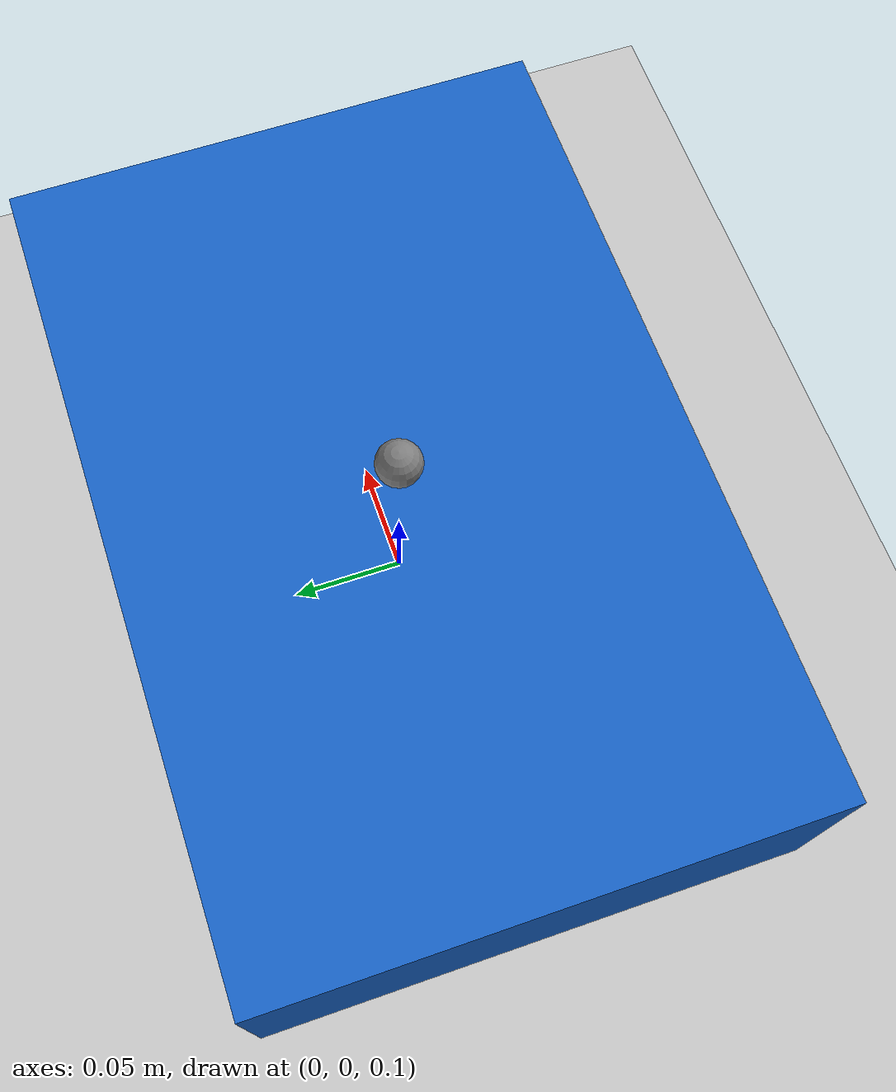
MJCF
<mujoco model="minimal_car">
  <option timestep="0.01" gravity="0 0 -9.81"/>
  <worldbody>
    <geom name="floor" type="plane" size="5 5 0.1" rgba="0.8 0.8 0.8 1"/>
    <body name="base" pos="0 0 0.15">
      <freejoint/>
      <geom type="box" size="0.18 0.12 0.05" mass="1.0" rgba="0.1 0.4 0.8 1"/>
      <site name="imu_site" pos="0 0 0.06" size="0.01"/>
    </body>
  </worldbody>
  <sensor>
    <accelerometer name="acc" site="imu_site"/>
    <gyro name="gyro" site="imu_site"/>
  </sensor>
</mujoco>
